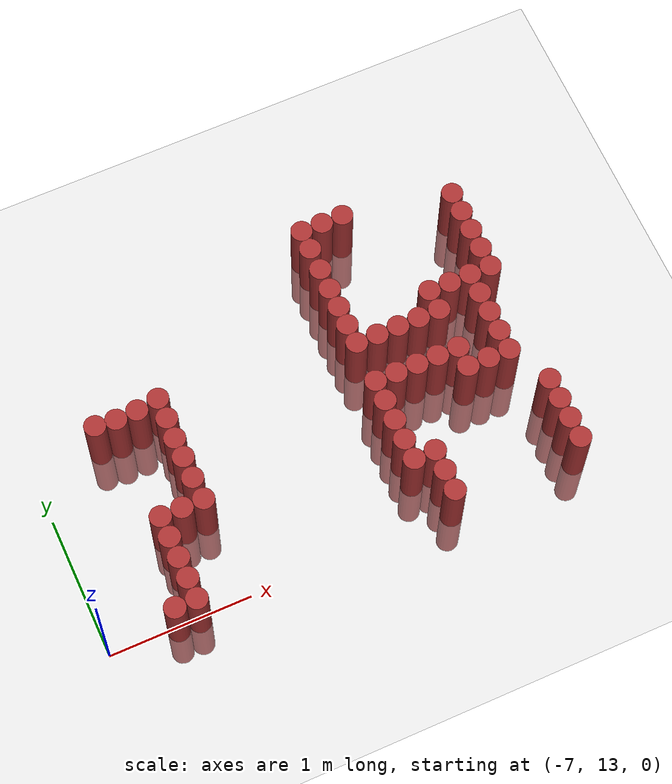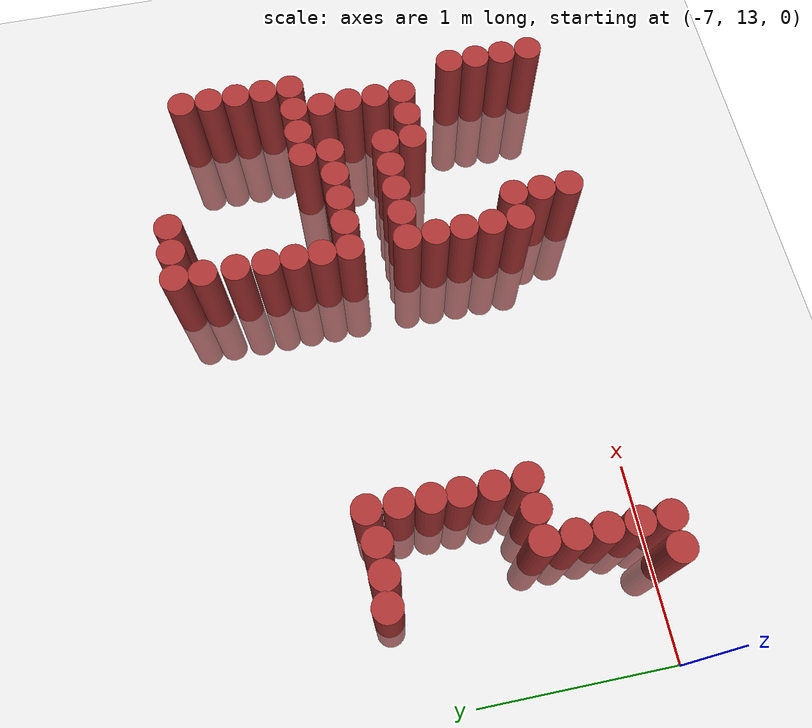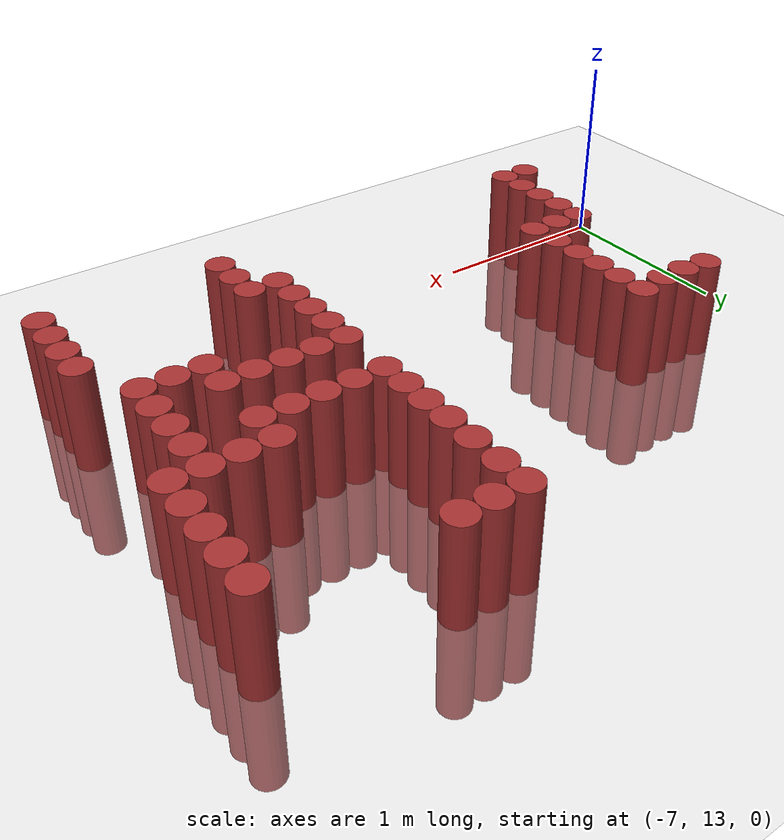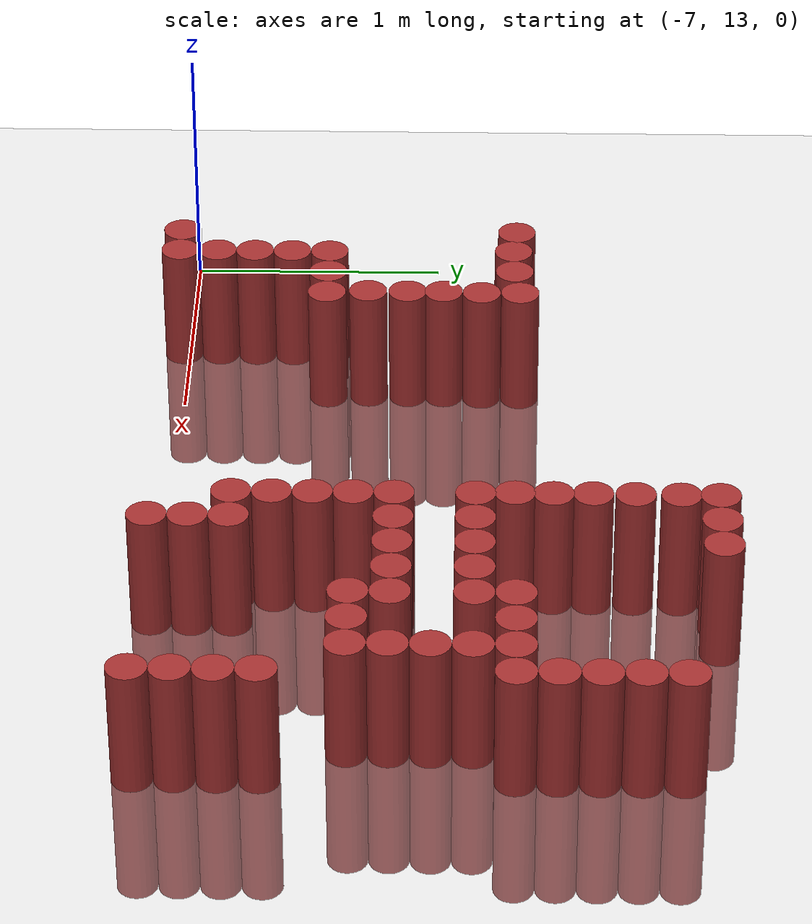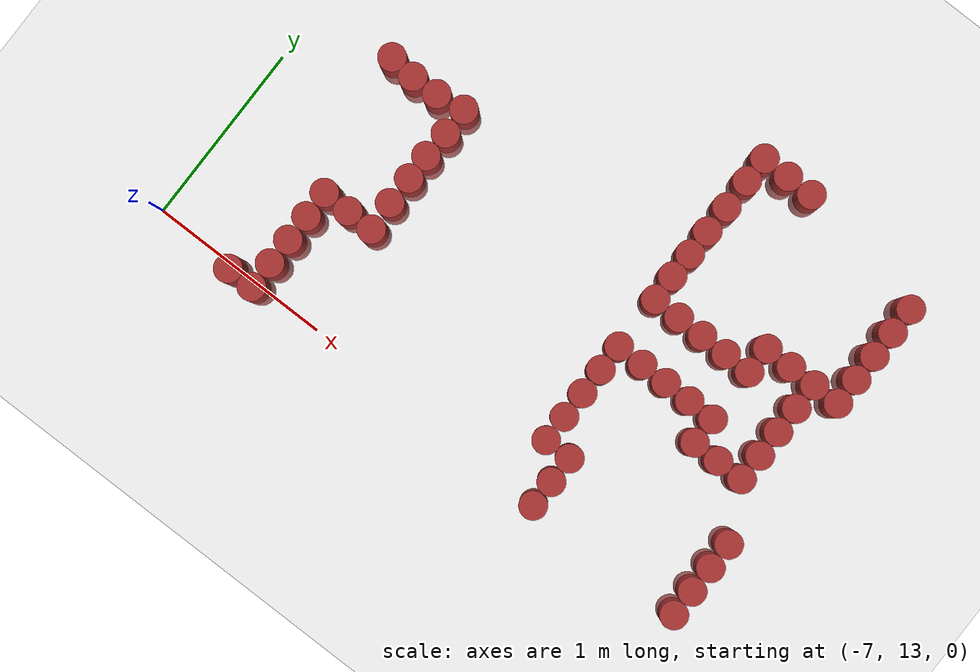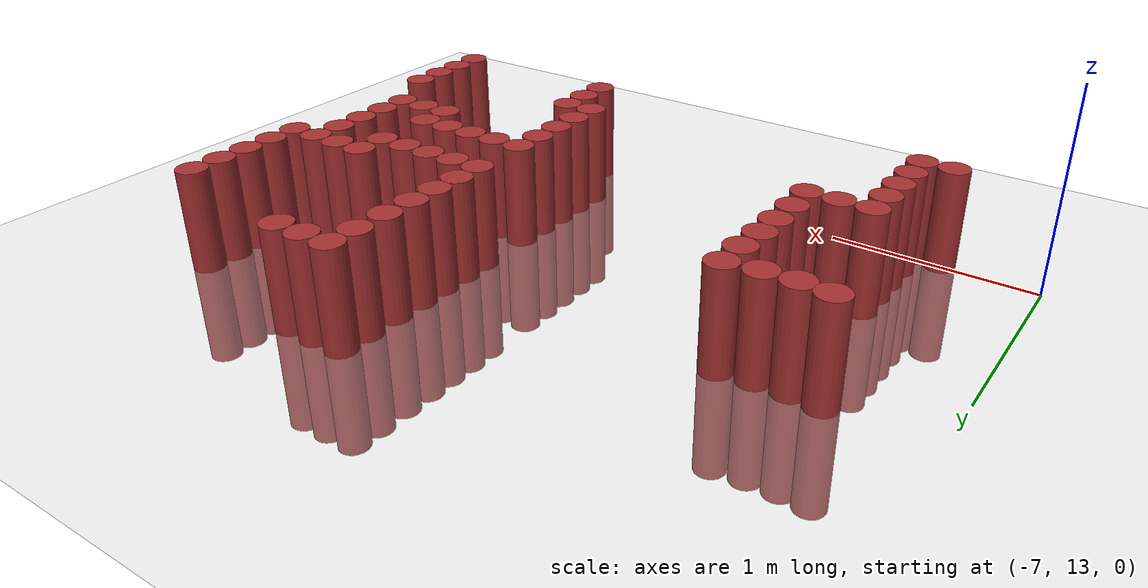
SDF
<sdf version="1.6">
 <world name="default">
  <model name="ground_plane">
   <static>1</static>
   <link name="link">
    <collision name="collision">
     <geometry><plane><normal>0 0 1</normal><size>100 100</size></plane></geometry>
     <surface><friction><ode><mu>100</mu><mu2>50</mu2></ode></friction></surface>
    </collision>
    <visual name="visual">
     <cast_shadows>0</cast_shadows>
     <geometry><plane><normal>0 0 1</normal><size>100 100</size></plane></geometry>
     <material>
      <script><uri>file://media/materials/scripts/gazebo.material</uri><name>Gazebo/Grey</name></script>
     </material>
    </visual>
   </link>
  </model>
  <model name="unit_cylinder_851">
   <static>1</static>
   <pose>-6.525 12.975 0 0 -0 0</pose>
   <link name="link">
    <inertial>
     <mass>1</mass>
     <inertia><ixx>0.145833</ixx><ixy>0</ixy><ixz>0</ixz><iyy>0.145833</iyy><iyz>0</iyz><izz>0.125</izz></inertia>
    </inertial>
    <collision name="collision">
     <geometry><cylinder><radius>0.075</radius><length>1</length></cylinder></geometry>
    </collision>
    <visual name="visual">
     <geometry><cylinder><radius>0.075</radius><length>1</length></cylinder></geometry>
     <material><ambient>0.648 0.192 0.192 1</ambient><diffuse>0.648 0.192 0.192 1</diffuse></material>
     <material>
      <script><name>Gazebo/Grey</name><uri>file://media/materials/scripts/gazebo.material</uri></script>
     </material>
    </visual>
   </link>
  </model>
  <model name="unit_cylinder_852">
   <static>1</static>
   <pose>-6.525 14.325 0 0 -0 0</pose>
   <link name="link">
    <inertial>
     <mass>1</mass>
     <inertia><ixx>0.145833</ixx><ixy>0</ixy><ixz>0</ixz><iyy>0.145833</iyy><iyz>0</iyz><izz>0.125</izz></inertia>
    </inertial>
    <collision name="collision">
     <geometry><cylinder><radius>0.075</radius><length>1</length></cylinder></geometry>
    </collision>
    <visual name="visual">
     <geometry><cylinder><radius>0.075</radius><length>1</length></cylinder></geometry>
     <material><ambient>0.648 0.192 0.192 1</ambient><diffuse>0.648 0.192 0.192 1</diffuse></material>
     <material>
      <script><name>Gazebo/Grey</name><uri>file://media/materials/scripts/gazebo.material</uri></script>
     </material>
    </visual>
   </link>
  </model>
  <model name="unit_cylinder_870">
   <static>1</static>
   <pose>-6.375 12.975 0 0 -0 0</pose>
   <link name="link">
    <inertial>
     <mass>1</mass>
     <inertia><ixx>0.145833</ixx><ixy>0</ixy><ixz>0</ixz><iyy>0.145833</iyy><iyz>0</iyz><izz>0.125</izz></inertia>
    </inertial>
    <collision name="collision">
     <geometry><cylinder><radius>0.075</radius><length>1</length></cylinder></geometry>
    </collision>
    <visual name="visual">
     <geometry><cylinder><radius>0.075</radius><length>1</length></cylinder></geometry>
     <material><ambient>0.648 0.192 0.192 1</ambient><diffuse>0.648 0.192 0.192 1</diffuse></material>
     <material>
      <script><name>Gazebo/Grey</name><uri>file://media/materials/scripts/gazebo.material</uri></script>
     </material>
    </visual>
   </link>
  </model>
  <model name="unit_cylinder_871">
   <static>1</static>
   <pose>-6.375 13.125 0 0 -0 0</pose>
   <link name="link">
    <inertial>
     <mass>1</mass>
     <inertia><ixx>0.145833</ixx><ixy>0</ixy><ixz>0</ixz><iyy>0.145833</iyy><iyz>0</iyz><izz>0.125</izz></inertia>
    </inertial>
    <collision name="collision">
     <geometry><cylinder><radius>0.075</radius><length>1</length></cylinder></geometry>
    </collision>
    <visual name="visual">
     <geometry><cylinder><radius>0.075</radius><length>1</length></cylinder></geometry>
     <material><ambient>0.648 0.192 0.192 1</ambient><diffuse>0.648 0.192 0.192 1</diffuse></material>
     <material>
      <script><name>Gazebo/Grey</name><uri>file://media/materials/scripts/gazebo.material</uri></script>
     </material>
    </visual>
   </link>
  </model>
  <model name="unit_cylinder_872">
   <static>1</static>
   <pose>-6.375 13.275 0 0 -0 0</pose>
   <link name="link">
    <inertial>
     <mass>1</mass>
     <inertia><ixx>0.145833</ixx><ixy>0</ixy><ixz>0</ixz><iyy>0.145833</iyy><iyz>0</iyz><izz>0.125</izz></inertia>
    </inertial>
    <collision name="collision">
     <geometry><cylinder><radius>0.075</radius><length>1</length></cylinder></geometry>
    </collision>
    <visual name="visual">
     <geometry><cylinder><radius>0.075</radius><length>1</length></cylinder></geometry>
     <material><ambient>0.648 0.192 0.192 1</ambient><diffuse>0.648 0.192 0.192 1</diffuse></material>
     <material>
      <script><name>Gazebo/Grey</name><uri>file://media/materials/scripts/gazebo.material</uri></script>
     </material>
    </visual>
   </link>
  </model>
  <model name="unit_cylinder_873">
   <static>1</static>
   <pose>-6.375 13.425 0 0 -0 0</pose>
   <link name="link">
    <inertial>
     <mass>1</mass>
     <inertia><ixx>0.145833</ixx><ixy>0</ixy><ixz>0</ixz><iyy>0.145833</iyy><iyz>0</iyz><izz>0.125</izz></inertia>
    </inertial>
    <collision name="collision">
     <geometry><cylinder><radius>0.075</radius><length>1</length></cylinder></geometry>
    </collision>
    <visual name="visual">
     <geometry><cylinder><radius>0.075</radius><length>1</length></cylinder></geometry>
     <material><ambient>0.648 0.192 0.192 1</ambient><diffuse>0.648 0.192 0.192 1</diffuse></material>
     <material>
      <script><name>Gazebo/Grey</name><uri>file://media/materials/scripts/gazebo.material</uri></script>
     </material>
    </visual>
   </link>
  </model>
  <model name="unit_cylinder_874">
   <static>1</static>
   <pose>-6.375 13.575 0 0 -0 0</pose>
   <link name="link">
    <inertial>
     <mass>1</mass>
     <inertia><ixx>0.145833</ixx><ixy>0</ixy><ixz>0</ixz><iyy>0.145833</iyy><iyz>0</iyz><izz>0.125</izz></inertia>
    </inertial>
    <collision name="collision">
     <geometry><cylinder><radius>0.075</radius><length>1</length></cylinder></geometry>
    </collision>
    <visual name="visual">
     <geometry><cylinder><radius>0.075</radius><length>1</length></cylinder></geometry>
     <material><ambient>0.648 0.192 0.192 1</ambient><diffuse>0.648 0.192 0.192 1</diffuse></material>
     <material>
      <script><name>Gazebo/Grey</name><uri>file://media/materials/scripts/gazebo.material</uri></script>
     </material>
    </visual>
   </link>
  </model>
  <model name="unit_cylinder_885">
   <static>1</static>
   <pose>-6.225 13.575 0 0 -0 0</pose>
   <link name="link">
    <inertial>
     <mass>1</mass>
     <inertia><ixx>0.145833</ixx><ixy>0</ixy><ixz>0</ixz><iyy>0.145833</iyy><iyz>0</iyz><izz>0.125</izz></inertia>
    </inertial>
    <collision name="collision">
     <geometry><cylinder><radius>0.075</radius><length>1</length></cylinder></geometry>
    </collision>
    <visual name="visual">
     <geometry><cylinder><radius>0.075</radius><length>1</length></cylinder></geometry>
     <material><ambient>0.648 0.192 0.192 1</ambient><diffuse>0.648 0.192 0.192 1</diffuse></material>
     <material>
      <script><name>Gazebo/Grey</name><uri>file://media/materials/scripts/gazebo.material</uri></script>
     </material>
    </visual>
   </link>
  </model>
  <model name="unit_cylinder_905">
   <static>1</static>
   <pose>-6.075 13.575 0 0 -0 0</pose>
   <link name="link">
    <inertial>
     <mass>1</mass>
     <inertia><ixx>0.145833</ixx><ixy>0</ixy><ixz>0</ixz><iyy>0.145833</iyy><iyz>0</iyz><izz>0.125</izz></inertia>
    </inertial>
    <collision name="collision">
     <geometry><cylinder><radius>0.075</radius><length>1</length></cylinder></geometry>
    </collision>
    <visual name="visual">
     <geometry><cylinder><radius>0.075</radius><length>1</length></cylinder></geometry>
     <material><ambient>0.648 0.192 0.192 1</ambient><diffuse>0.648 0.192 0.192 1</diffuse></material>
     <material>
      <script><name>Gazebo/Grey</name><uri>file://media/materials/scripts/gazebo.material</uri></script>
     </material>
    </visual>
   </link>
  </model>
  <model name="unit_cylinder_1054">
   <static>1</static>
   <pose>-4.725 13.275 0 0 -0 0</pose>
   <link name="link">
    <inertial>
     <mass>1</mass>
     <inertia><ixx>0.145833</ixx><ixy>0</ixy><ixz>0</ixz><iyy>0.145833</iyy><iyz>0</iyz><izz>0.125</izz></inertia>
    </inertial>
    <collision name="collision">
     <geometry><cylinder><radius>0.075</radius><length>1</length></cylinder></geometry>
    </collision>
    <visual name="visual">
     <geometry><cylinder><radius>0.075</radius><length>1</length></cylinder></geometry>
     <material><ambient>0.648 0.192 0.192 1</ambient><diffuse>0.648 0.192 0.192 1</diffuse></material>
     <material>
      <script><name>Gazebo/Grey</name><uri>file://media/materials/scripts/gazebo.material</uri></script>
     </material>
    </visual>
   </link>
  </model>
  <model name="unit_cylinder_1055">
   <static>1</static>
   <pose>-4.725 13.425 0 0 -0 0</pose>
   <link name="link">
    <inertial>
     <mass>1</mass>
     <inertia><ixx>0.145833</ixx><ixy>0</ixy><ixz>0</ixz><iyy>0.145833</iyy><iyz>0</iyz><izz>0.125</izz></inertia>
    </inertial>
    <collision name="collision">
     <geometry><cylinder><radius>0.075</radius><length>1</length></cylinder></geometry>
    </collision>
    <visual name="visual">
     <geometry><cylinder><radius>0.075</radius><length>1</length></cylinder></geometry>
     <material><ambient>0.648 0.192 0.192 1</ambient><diffuse>0.648 0.192 0.192 1</diffuse></material>
     <material>
      <script><name>Gazebo/Grey</name><uri>file://media/materials/scripts/gazebo.material</uri></script>
     </material>
    </visual>
   </link>
  </model>
  <model name="unit_cylinder_1056">
   <static>1</static>
   <pose>-4.725 13.575 0 0 -0 0</pose>
   <link name="link">
    <inertial>
     <mass>1</mass>
     <inertia><ixx>0.145833</ixx><ixy>0</ixy><ixz>0</ixz><iyy>0.145833</iyy><iyz>0</iyz><izz>0.125</izz></inertia>
    </inertial>
    <collision name="collision">
     <geometry><cylinder><radius>0.075</radius><length>1</length></cylinder></geometry>
    </collision>
    <visual name="visual">
     <geometry><cylinder><radius>0.075</radius><length>1</length></cylinder></geometry>
     <material><ambient>0.648 0.192 0.192 1</ambient><diffuse>0.648 0.192 0.192 1</diffuse></material>
     <material>
      <script><name>Gazebo/Grey</name><uri>file://media/materials/scripts/gazebo.material</uri></script>
     </material>
    </visual>
   </link>
  </model>
  <model name="unit_cylinder_1057">
   <static>1</static>
   <pose>-4.725 13.725 0 0 -0 0</pose>
   <link name="link">
    <inertial>
     <mass>1</mass>
     <inertia><ixx>0.145833</ixx><ixy>0</ixy><ixz>0</ixz><iyy>0.145833</iyy><iyz>0</iyz><izz>0.125</izz></inertia>
    </inertial>
    <collision name="collision">
     <geometry><cylinder><radius>0.075</radius><length>1</length></cylinder></geometry>
    </collision>
    <visual name="visual">
     <geometry><cylinder><radius>0.075</radius><length>1</length></cylinder></geometry>
     <material><ambient>0.648 0.192 0.192 1</ambient><diffuse>0.648 0.192 0.192 1</diffuse></material>
     <material>
      <script><name>Gazebo/Grey</name><uri>file://media/materials/scripts/gazebo.material</uri></script>
     </material>
    </visual>
   </link>
  </model>
  <model name="unit_cylinder_1058">
   <static>1</static>
   <pose>-4.725 13.875 0 0 -0 0</pose>
   <link name="link">
    <inertial>
     <mass>1</mass>
     <inertia><ixx>0.145833</ixx><ixy>0</ixy><ixz>0</ixz><iyy>0.145833</iyy><iyz>0</iyz><izz>0.125</izz></inertia>
    </inertial>
    <collision name="collision">
     <geometry><cylinder><radius>0.075</radius><length>1</length></cylinder></geometry>
    </collision>
    <visual name="visual">
     <geometry><cylinder><radius>0.075</radius><length>1</length></cylinder></geometry>
     <material><ambient>0.648 0.192 0.192 1</ambient><diffuse>0.648 0.192 0.192 1</diffuse></material>
     <material>
      <script><name>Gazebo/Grey</name><uri>file://media/materials/scripts/gazebo.material</uri></script>
     </material>
    </visual>
   </link>
  </model>
  <model name="unit_cylinder_1059">
   <static>1</static>
   <pose>-4.725 14.175 0 0 -0 0</pose>
   <link name="link">
    <inertial>
     <mass>1</mass>
     <inertia><ixx>0.145833</ixx><ixy>0</ixy><ixz>0</ixz><iyy>0.145833</iyy><iyz>0</iyz><izz>0.125</izz></inertia>
    </inertial>
    <collision name="collision">
     <geometry><cylinder><radius>0.075</radius><length>1</length></cylinder></geometry>
    </collision>
    <visual name="visual">
     <geometry><cylinder><radius>0.075</radius><length>1</length></cylinder></geometry>
     <material><ambient>0.648 0.192 0.192 1</ambient><diffuse>0.648 0.192 0.192 1</diffuse></material>
     <material>
      <script><name>Gazebo/Grey</name><uri>file://media/materials/scripts/gazebo.material</uri></script>
     </material>
    </visual>
   </link>
  </model>
  <model name="unit_cylinder_1060">
   <static>1</static>
   <pose>-4.725 15.075 0 0 -0 0</pose>
   <link name="link">
    <inertial>
     <mass>1</mass>
     <inertia><ixx>0.145833</ixx><ixy>0</ixy><ixz>0</ixz><iyy>0.145833</iyy><iyz>0</iyz><izz>0.125</izz></inertia>
    </inertial>
    <collision name="collision">
     <geometry><cylinder><radius>0.075</radius><length>1</length></cylinder></geometry>
    </collision>
    <visual name="visual">
     <geometry><cylinder><radius>0.075</radius><length>1</length></cylinder></geometry>
     <material><ambient>0.648 0.192 0.192 1</ambient><diffuse>0.648 0.192 0.192 1</diffuse></material>
     <material>
      <script><name>Gazebo/Grey</name><uri>file://media/materials/scripts/gazebo.material</uri></script>
     </material>
    </visual>
   </link>
  </model>
  <model name="unit_cylinder_1090">
   <static>1</static>
   <pose>-4.575 12.975 0 0 -0 0</pose>
   <link name="link">
    <inertial>
     <mass>1</mass>
     <inertia><ixx>0.145833</ixx><ixy>0</ixy><ixz>0</ixz><iyy>0.145833</iyy><iyz>0</iyz><izz>0.125</izz></inertia>
    </inertial>
    <collision name="collision">
     <geometry><cylinder><radius>0.075</radius><length>1</length></cylinder></geometry>
    </collision>
    <visual name="visual">
     <geometry><cylinder><radius>0.075</radius><length>1</length></cylinder></geometry>
     <material><ambient>0.648 0.192 0.192 1</ambient><diffuse>0.648 0.192 0.192 1</diffuse></material>
     <material>
      <script><name>Gazebo/Grey</name><uri>file://media/materials/scripts/gazebo.material</uri></script>
     </material>
    </visual>
   </link>
  </model>
  <model name="unit_cylinder_1091">
   <static>1</static>
   <pose>-4.575 13.125 0 0 -0 0</pose>
   <link name="link">
    <inertial>
     <mass>1</mass>
     <inertia><ixx>0.145833</ixx><ixy>0</ixy><ixz>0</ixz><iyy>0.145833</iyy><iyz>0</iyz><izz>0.125</izz></inertia>
    </inertial>
    <collision name="collision">
     <geometry><cylinder><radius>0.075</radius><length>1</length></cylinder></geometry>
    </collision>
    <visual name="visual">
     <geometry><cylinder><radius>0.075</radius><length>1</length></cylinder></geometry>
     <material><ambient>0.648 0.192 0.192 1</ambient><diffuse>0.648 0.192 0.192 1</diffuse></material>
     <material>
      <script><name>Gazebo/Grey</name><uri>file://media/materials/scripts/gazebo.material</uri></script>
     </material>
    </visual>
   </link>
  </model>
  <model name="unit_cylinder_1092">
   <static>1</static>
   <pose>-4.575 13.275 0 0 -0 0</pose>
   <link name="link">
    <inertial>
     <mass>1</mass>
     <inertia><ixx>0.145833</ixx><ixy>0</ixy><ixz>0</ixz><iyy>0.145833</iyy><iyz>0</iyz><izz>0.125</izz></inertia>
    </inertial>
    <collision name="collision">
     <geometry><cylinder><radius>0.075</radius><length>1</length></cylinder></geometry>
    </collision>
    <visual name="visual">
     <geometry><cylinder><radius>0.075</radius><length>1</length></cylinder></geometry>
     <material><ambient>0.648 0.192 0.192 1</ambient><diffuse>0.648 0.192 0.192 1</diffuse></material>
     <material>
      <script><name>Gazebo/Grey</name><uri>file://media/materials/scripts/gazebo.material</uri></script>
     </material>
    </visual>
   </link>
  </model>
  <model name="unit_cylinder_1093">
   <static>1</static>
   <pose>-4.575 13.875 0 0 -0 0</pose>
   <link name="link">
    <inertial>
     <mass>1</mass>
     <inertia><ixx>0.145833</ixx><ixy>0</ixy><ixz>0</ixz><iyy>0.145833</iyy><iyz>0</iyz><izz>0.125</izz></inertia>
    </inertial>
    <collision name="collision">
     <geometry><cylinder><radius>0.075</radius><length>1</length></cylinder></geometry>
    </collision>
    <visual name="visual">
     <geometry><cylinder><radius>0.075</radius><length>1</length></cylinder></geometry>
     <material><ambient>0.648 0.192 0.192 1</ambient><diffuse>0.648 0.192 0.192 1</diffuse></material>
     <material>
      <script><name>Gazebo/Grey</name><uri>file://media/materials/scripts/gazebo.material</uri></script>
     </material>
    </visual>
   </link>
  </model>
  <model name="unit_cylinder_1094">
   <static>1</static>
   <pose>-4.575 14.175 0 0 -0 0</pose>
   <link name="link">
    <inertial>
     <mass>1</mass>
     <inertia><ixx>0.145833</ixx><ixy>0</ixy><ixz>0</ixz><iyy>0.145833</iyy><iyz>0</iyz><izz>0.125</izz></inertia>
    </inertial>
    <collision name="collision">
     <geometry><cylinder><radius>0.075</radius><length>1</length></cylinder></geometry>
    </collision>
    <visual name="visual">
     <geometry><cylinder><radius>0.075</radius><length>1</length></cylinder></geometry>
     <material><ambient>0.648 0.192 0.192 1</ambient><diffuse>0.648 0.192 0.192 1</diffuse></material>
     <material>
      <script><name>Gazebo/Grey</name><uri>file://media/materials/scripts/gazebo.material</uri></script>
     </material>
    </visual>
   </link>
  </model>
  <model name="unit_cylinder_1095">
   <static>1</static>
   <pose>-4.575 15.075 0 0 -0 0</pose>
   <link name="link">
    <inertial>
     <mass>1</mass>
     <inertia><ixx>0.145833</ixx><ixy>0</ixy><ixz>0</ixz><iyy>0.145833</iyy><iyz>0</iyz><izz>0.125</izz></inertia>
    </inertial>
    <collision name="collision">
     <geometry><cylinder><radius>0.075</radius><length>1</length></cylinder></geometry>
    </collision>
    <visual name="visual">
     <geometry><cylinder><radius>0.075</radius><length>1</length></cylinder></geometry>
     <material><ambient>0.648 0.192 0.192 1</ambient><diffuse>0.648 0.192 0.192 1</diffuse></material>
     <material>
      <script><name>Gazebo/Grey</name><uri>file://media/materials/scripts/gazebo.material</uri></script>
     </material>
    </visual>
   </link>
  </model>
  <model name="unit_cylinder_1107">
   <static>1</static>
   <pose>-4.425 13.875 0 0 -0 0</pose>
   <link name="link">
    <inertial>
     <mass>1</mass>
     <inertia><ixx>0.145833</ixx><ixy>0</ixy><ixz>0</ixz><iyy>0.145833</iyy><iyz>0</iyz><izz>0.125</izz></inertia>
    </inertial>
    <collision name="collision">
     <geometry><cylinder><radius>0.075</radius><length>1</length></cylinder></geometry>
    </collision>
    <visual name="visual">
     <geometry><cylinder><radius>0.075</radius><length>1</length></cylinder></geometry>
     <material><ambient>0.648 0.192 0.192 1</ambient><diffuse>0.648 0.192 0.192 1</diffuse></material>
     <material>
      <script><name>Gazebo/Grey</name><uri>file://media/materials/scripts/gazebo.material</uri></script>
     </material>
    </visual>
   </link>
  </model>
  <model name="unit_cylinder_1108">
   <static>1</static>
   <pose>-4.425 14.175 0 0 -0 0</pose>
   <link name="link">
    <inertial>
     <mass>1</mass>
     <inertia><ixx>0.145833</ixx><ixy>0</ixy><ixz>0</ixz><iyy>0.145833</iyy><iyz>0</iyz><izz>0.125</izz></inertia>
    </inertial>
    <collision name="collision">
     <geometry><cylinder><radius>0.075</radius><length>1</length></cylinder></geometry>
    </collision>
    <visual name="visual">
     <geometry><cylinder><radius>0.075</radius><length>1</length></cylinder></geometry>
     <material><ambient>0.648 0.192 0.192 1</ambient><diffuse>0.648 0.192 0.192 1</diffuse></material>
     <material>
      <script><name>Gazebo/Grey</name><uri>file://media/materials/scripts/gazebo.material</uri></script>
     </material>
    </visual>
   </link>
  </model>
  <model name="unit_cylinder_1109">
   <static>1</static>
   <pose>-4.425 15.075 0 0 -0 0</pose>
   <link name="link">
    <inertial>
     <mass>1</mass>
     <inertia><ixx>0.145833</ixx><ixy>0</ixy><ixz>0</ixz><iyy>0.145833</iyy><iyz>0</iyz><izz>0.125</izz></inertia>
    </inertial>
    <collision name="collision">
     <geometry><cylinder><radius>0.075</radius><length>1</length></cylinder></geometry>
    </collision>
    <visual name="visual">
     <geometry><cylinder><radius>0.075</radius><length>1</length></cylinder></geometry>
     <material><ambient>0.648 0.192 0.192 1</ambient><diffuse>0.648 0.192 0.192 1</diffuse></material>
     <material>
      <script><name>Gazebo/Grey</name><uri>file://media/materials/scripts/gazebo.material</uri></script>
     </material>
    </visual>
   </link>
  </model>
  <model name="unit_cylinder_1122">
   <static>1</static>
   <pose>-4.275 13.875 0 0 -0 0</pose>
   <link name="link">
    <inertial>
     <mass>1</mass>
     <inertia><ixx>0.145833</ixx><ixy>0</ixy><ixz>0</ixz><iyy>0.145833</iyy><iyz>0</iyz><izz>0.125</izz></inertia>
    </inertial>
    <collision name="collision">
     <geometry><cylinder><radius>0.075</radius><length>1</length></cylinder></geometry>
    </collision>
    <visual name="visual">
     <geometry><cylinder><radius>0.075</radius><length>1</length></cylinder></geometry>
     <material><ambient>0.648 0.192 0.192 1</ambient><diffuse>0.648 0.192 0.192 1</diffuse></material>
     <material>
      <script><name>Gazebo/Grey</name><uri>file://media/materials/scripts/gazebo.material</uri></script>
     </material>
    </visual>
   </link>
  </model>
  <model name="unit_cylinder_1123">
   <static>1</static>
   <pose>-4.275 14.175 0 0 -0 0</pose>
   <link name="link">
    <inertial>
     <mass>1</mass>
     <inertia><ixx>0.145833</ixx><ixy>0</ixy><ixz>0</ixz><iyy>0.145833</iyy><iyz>0</iyz><izz>0.125</izz></inertia>
    </inertial>
    <collision name="collision">
     <geometry><cylinder><radius>0.075</radius><length>1</length></cylinder></geometry>
    </collision>
    <visual name="visual">
     <geometry><cylinder><radius>0.075</radius><length>1</length></cylinder></geometry>
     <material><ambient>0.648 0.192 0.192 1</ambient><diffuse>0.648 0.192 0.192 1</diffuse></material>
     <material>
      <script><name>Gazebo/Grey</name><uri>file://media/materials/scripts/gazebo.material</uri></script>
     </material>
    </visual>
   </link>
  </model>
  <model name="unit_cylinder_1133">
   <static>1</static>
   <pose>-4.125 13.725 0 0 -0 0</pose>
   <link name="link">
    <inertial>
     <mass>1</mass>
     <inertia><ixx>0.145833</ixx><ixy>0</ixy><ixz>0</ixz><iyy>0.145833</iyy><iyz>0</iyz><izz>0.125</izz></inertia>
    </inertial>
    <collision name="collision">
     <geometry><cylinder><radius>0.075</radius><length>1</length></cylinder></geometry>
    </collision>
    <visual name="visual">
     <geometry><cylinder><radius>0.075</radius><length>1</length></cylinder></geometry>
     <material><ambient>0.648 0.192 0.192 1</ambient><diffuse>0.648 0.192 0.192 1</diffuse></material>
     <material>
      <script><name>Gazebo/Grey</name><uri>file://media/materials/scripts/gazebo.material</uri></script>
     </material>
    </visual>
   </link>
  </model>
  <model name="unit_cylinder_1134">
   <static>1</static>
   <pose>-4.125 13.875 0 0 -0 0</pose>
   <link name="link">
    <inertial>
     <mass>1</mass>
     <inertia><ixx>0.145833</ixx><ixy>0</ixy><ixz>0</ixz><iyy>0.145833</iyy><iyz>0</iyz><izz>0.125</izz></inertia>
    </inertial>
    <collision name="collision">
     <geometry><cylinder><radius>0.075</radius><length>1</length></cylinder></geometry>
    </collision>
    <visual name="visual">
     <geometry><cylinder><radius>0.075</radius><length>1</length></cylinder></geometry>
     <material><ambient>0.648 0.192 0.192 1</ambient><diffuse>0.648 0.192 0.192 1</diffuse></material>
     <material>
      <script><name>Gazebo/Grey</name><uri>file://media/materials/scripts/gazebo.material</uri></script>
     </material>
    </visual>
   </link>
  </model>
  <model name="unit_cylinder_1135">
   <static>1</static>
   <pose>-4.125 14.175 0 0 -0 0</pose>
   <link name="link">
    <inertial>
     <mass>1</mass>
     <inertia><ixx>0.145833</ixx><ixy>0</ixy><ixz>0</ixz><iyy>0.145833</iyy><iyz>0</iyz><izz>0.125</izz></inertia>
    </inertial>
    <collision name="collision">
     <geometry><cylinder><radius>0.075</radius><length>1</length></cylinder></geometry>
    </collision>
    <visual name="visual">
     <geometry><cylinder><radius>0.075</radius><length>1</length></cylinder></geometry>
     <material><ambient>0.648 0.192 0.192 1</ambient><diffuse>0.648 0.192 0.192 1</diffuse></material>
     <material>
      <script><name>Gazebo/Grey</name><uri>file://media/materials/scripts/gazebo.material</uri></script>
     </material>
    </visual>
   </link>
  </model>
  <model name="unit_cylinder_1136">
   <static>1</static>
   <pose>-4.125 14.325 0 0 -0 0</pose>
   <link name="link">
    <inertial>
     <mass>1</mass>
     <inertia><ixx>0.145833</ixx><ixy>0</ixy><ixz>0</ixz><iyy>0.145833</iyy><iyz>0</iyz><izz>0.125</izz></inertia>
    </inertial>
    <collision name="collision">
     <geometry><cylinder><radius>0.075</radius><length>1</length></cylinder></geometry>
    </collision>
    <visual name="visual">
     <geometry><cylinder><radius>0.075</radius><length>1</length></cylinder></geometry>
     <material><ambient>0.648 0.192 0.192 1</ambient><diffuse>0.648 0.192 0.192 1</diffuse></material>
     <material>
      <script><name>Gazebo/Grey</name><uri>file://media/materials/scripts/gazebo.material</uri></script>
     </material>
    </visual>
   </link>
  </model>
  <model name="unit_cylinder_1143">
   <static>1</static>
   <pose>-3.975 13.725 0 0 -0 0</pose>
   <link name="link">
    <inertial>
     <mass>1</mass>
     <inertia><ixx>0.145833</ixx><ixy>0</ixy><ixz>0</ixz><iyy>0.145833</iyy><iyz>0</iyz><izz>0.125</izz></inertia>
    </inertial>
    <collision name="collision">
     <geometry><cylinder><radius>0.075</radius><length>1</length></cylinder></geometry>
    </collision>
    <visual name="visual">
     <geometry><cylinder><radius>0.075</radius><length>1</length></cylinder></geometry>
     <material><ambient>0.648 0.192 0.192 1</ambient><diffuse>0.648 0.192 0.192 1</diffuse></material>
     <material>
      <script><name>Gazebo/Grey</name><uri>file://media/materials/scripts/gazebo.material</uri></script>
     </material>
    </visual>
   </link>
  </model>
  <model name="unit_cylinder_1144">
   <static>1</static>
   <pose>-3.975 14.325 0 0 -0 0</pose>
   <link name="link">
    <inertial>
     <mass>1</mass>
     <inertia><ixx>0.145833</ixx><ixy>0</ixy><ixz>0</ixz><iyy>0.145833</iyy><iyz>0</iyz><izz>0.125</izz></inertia>
    </inertial>
    <collision name="collision">
     <geometry><cylinder><radius>0.075</radius><length>1</length></cylinder></geometry>
    </collision>
    <visual name="visual">
     <geometry><cylinder><radius>0.075</radius><length>1</length></cylinder></geometry>
     <material><ambient>0.648 0.192 0.192 1</ambient><diffuse>0.648 0.192 0.192 1</diffuse></material>
     <material>
      <script><name>Gazebo/Grey</name><uri>file://media/materials/scripts/gazebo.material</uri></script>
     </material>
    </visual>
   </link>
  </model>
  <model name="unit_cylinder_1151">
   <static>1</static>
   <pose>-3.825 13.725 0 0 -0 0</pose>
   <link name="link">
    <inertial>
     <mass>1</mass>
     <inertia><ixx>0.145833</ixx><ixy>0</ixy><ixz>0</ixz><iyy>0.145833</iyy><iyz>0</iyz><izz>0.125</izz></inertia>
    </inertial>
    <collision name="collision">
     <geometry><cylinder><radius>0.075</radius><length>1</length></cylinder></geometry>
    </collision>
    <visual name="visual">
     <geometry><cylinder><radius>0.075</radius><length>1</length></cylinder></geometry>
     <material><ambient>0.648 0.192 0.192 1</ambient><diffuse>0.648 0.192 0.192 1</diffuse></material>
     <material>
      <script><name>Gazebo/Grey</name><uri>file://media/materials/scripts/gazebo.material</uri></script>
     </material>
    </visual>
   </link>
  </model>
  <model name="unit_cylinder_1152">
   <static>1</static>
   <pose>-3.825 13.875 0 0 -0 0</pose>
   <link name="link">
    <inertial>
     <mass>1</mass>
     <inertia><ixx>0.145833</ixx><ixy>0</ixy><ixz>0</ixz><iyy>0.145833</iyy><iyz>0</iyz><izz>0.125</izz></inertia>
    </inertial>
    <collision name="collision">
     <geometry><cylinder><radius>0.075</radius><length>1</length></cylinder></geometry>
    </collision>
    <visual name="visual">
     <geometry><cylinder><radius>0.075</radius><length>1</length></cylinder></geometry>
     <material><ambient>0.648 0.192 0.192 1</ambient><diffuse>0.648 0.192 0.192 1</diffuse></material>
     <material>
      <script><name>Gazebo/Grey</name><uri>file://media/materials/scripts/gazebo.material</uri></script>
     </material>
    </visual>
   </link>
  </model>
  <model name="unit_cylinder_1153">
   <static>1</static>
   <pose>-3.825 14.025 0 0 -0 0</pose>
   <link name="link">
    <inertial>
     <mass>1</mass>
     <inertia><ixx>0.145833</ixx><ixy>0</ixy><ixz>0</ixz><iyy>0.145833</iyy><iyz>0</iyz><izz>0.125</izz></inertia>
    </inertial>
    <collision name="collision">
     <geometry><cylinder><radius>0.075</radius><length>1</length></cylinder></geometry>
    </collision>
    <visual name="visual">
     <geometry><cylinder><radius>0.075</radius><length>1</length></cylinder></geometry>
     <material><ambient>0.648 0.192 0.192 1</ambient><diffuse>0.648 0.192 0.192 1</diffuse></material>
     <material>
      <script><name>Gazebo/Grey</name><uri>file://media/materials/scripts/gazebo.material</uri></script>
     </material>
    </visual>
   </link>
  </model>
  <model name="unit_cylinder_1154">
   <static>1</static>
   <pose>-3.825 14.175 0 0 -0 0</pose>
   <link name="link">
    <inertial>
     <mass>1</mass>
     <inertia><ixx>0.145833</ixx><ixy>0</ixy><ixz>0</ixz><iyy>0.145833</iyy><iyz>0</iyz><izz>0.125</izz></inertia>
    </inertial>
    <collision name="collision">
     <geometry><cylinder><radius>0.075</radius><length>1</length></cylinder></geometry>
    </collision>
    <visual name="visual">
     <geometry><cylinder><radius>0.075</radius><length>1</length></cylinder></geometry>
     <material><ambient>0.648 0.192 0.192 1</ambient><diffuse>0.648 0.192 0.192 1</diffuse></material>
     <material>
      <script><name>Gazebo/Grey</name><uri>file://media/materials/scripts/gazebo.material</uri></script>
     </material>
    </visual>
   </link>
  </model>
  <model name="unit_cylinder_1155">
   <static>1</static>
   <pose>-3.825 14.325 0 0 -0 0</pose>
   <link name="link">
    <inertial>
     <mass>1</mass>
     <inertia><ixx>0.145833</ixx><ixy>0</ixy><ixz>0</ixz><iyy>0.145833</iyy><iyz>0</iyz><izz>0.125</izz></inertia>
    </inertial>
    <collision name="collision">
     <geometry><cylinder><radius>0.075</radius><length>1</length></cylinder></geometry>
    </collision>
    <visual name="visual">
     <geometry><cylinder><radius>0.075</radius><length>1</length></cylinder></geometry>
     <material><ambient>0.648 0.192 0.192 1</ambient><diffuse>0.648 0.192 0.192 1</diffuse></material>
     <material>
      <script><name>Gazebo/Grey</name><uri>file://media/materials/scripts/gazebo.material</uri></script>
     </material>
    </visual>
   </link>
  </model>
  <model name="unit_cylinder_1170">
   <static>1</static>
   <pose>-3.675 12.975 0 0 -0 0</pose>
   <link name="link">
    <inertial>
     <mass>1</mass>
     <inertia><ixx>0.145833</ixx><ixy>0</ixy><ixz>0</ixz><iyy>0.145833</iyy><iyz>0</iyz><izz>0.125</izz></inertia>
    </inertial>
    <collision name="collision">
     <geometry><cylinder><radius>0.075</radius><length>1</length></cylinder></geometry>
    </collision>
    <visual name="visual">
     <geometry><cylinder><radius>0.075</radius><length>1</length></cylinder></geometry>
     <material><ambient>0.648 0.192 0.192 1</ambient><diffuse>0.648 0.192 0.192 1</diffuse></material>
     <material>
      <script><name>Gazebo/Grey</name><uri>file://media/materials/scripts/gazebo.material</uri></script>
     </material>
    </visual>
   </link>
  </model>
  <model name="unit_cylinder_1171">
   <static>1</static>
   <pose>-3.675 13.125 0 0 -0 0</pose>
   <link name="link">
    <inertial>
     <mass>1</mass>
     <inertia><ixx>0.145833</ixx><ixy>0</ixy><ixz>0</ixz><iyy>0.145833</iyy><iyz>0</iyz><izz>0.125</izz></inertia>
    </inertial>
    <collision name="collision">
     <geometry><cylinder><radius>0.075</radius><length>1</length></cylinder></geometry>
    </collision>
    <visual name="visual">
     <geometry><cylinder><radius>0.075</radius><length>1</length></cylinder></geometry>
     <material><ambient>0.648 0.192 0.192 1</ambient><diffuse>0.648 0.192 0.192 1</diffuse></material>
     <material>
      <script><name>Gazebo/Grey</name><uri>file://media/materials/scripts/gazebo.material</uri></script>
     </material>
    </visual>
   </link>
  </model>
  <model name="unit_cylinder_1172">
   <static>1</static>
   <pose>-3.675 13.275 0 0 -0 0</pose>
   <link name="link">
    <inertial>
     <mass>1</mass>
     <inertia><ixx>0.145833</ixx><ixy>0</ixy><ixz>0</ixz><iyy>0.145833</iyy><iyz>0</iyz><izz>0.125</izz></inertia>
    </inertial>
    <collision name="collision">
     <geometry><cylinder><radius>0.075</radius><length>1</length></cylinder></geometry>
    </collision>
    <visual name="visual">
     <geometry><cylinder><radius>0.075</radius><length>1</length></cylinder></geometry>
     <material><ambient>0.648 0.192 0.192 1</ambient><diffuse>0.648 0.192 0.192 1</diffuse></material>
     <material>
      <script><name>Gazebo/Grey</name><uri>file://media/materials/scripts/gazebo.material</uri></script>
     </material>
    </visual>
   </link>
  </model>
  <model name="unit_cylinder_1173">
   <static>1</static>
   <pose>-3.675 13.425 0 0 -0 0</pose>
   <link name="link">
    <inertial>
     <mass>1</mass>
     <inertia><ixx>0.145833</ixx><ixy>0</ixy><ixz>0</ixz><iyy>0.145833</iyy><iyz>0</iyz><izz>0.125</izz></inertia>
    </inertial>
    <collision name="collision">
     <geometry><cylinder><radius>0.075</radius><length>1</length></cylinder></geometry>
    </collision>
    <visual name="visual">
     <geometry><cylinder><radius>0.075</radius><length>1</length></cylinder></geometry>
     <material><ambient>0.648 0.192 0.192 1</ambient><diffuse>0.648 0.192 0.192 1</diffuse></material>
     <material>
      <script><name>Gazebo/Grey</name><uri>file://media/materials/scripts/gazebo.material</uri></script>
     </material>
    </visual>
   </link>
  </model>
  <model name="unit_cylinder_1174">
   <static>1</static>
   <pose>-3.675 14.325 0 0 -0 0</pose>
   <link name="link">
    <inertial>
     <mass>1</mass>
     <inertia><ixx>0.145833</ixx><ixy>0</ixy><ixz>0</ixz><iyy>0.145833</iyy><iyz>0</iyz><izz>0.125</izz></inertia>
    </inertial>
    <collision name="collision">
     <geometry><cylinder><radius>0.075</radius><length>1</length></cylinder></geometry>
    </collision>
    <visual name="visual">
     <geometry><cylinder><radius>0.075</radius><length>1</length></cylinder></geometry>
     <material><ambient>0.648 0.192 0.192 1</ambient><diffuse>0.648 0.192 0.192 1</diffuse></material>
     <material>
      <script><name>Gazebo/Grey</name><uri>file://media/materials/scripts/gazebo.material</uri></script>
     </material>
    </visual>
   </link>
  </model>
  <model name="unit_cylinder_1175">
   <static>1</static>
   <pose>-3.675 14.475 0 0 -0 0</pose>
   <link name="link">
    <inertial>
     <mass>1</mass>
     <inertia><ixx>0.145833</ixx><ixy>0</ixy><ixz>0</ixz><iyy>0.145833</iyy><iyz>0</iyz><izz>0.125</izz></inertia>
    </inertial>
    <collision name="collision">
     <geometry><cylinder><radius>0.075</radius><length>1</length></cylinder></geometry>
    </collision>
    <visual name="visual">
     <geometry><cylinder><radius>0.075</radius><length>1</length></cylinder></geometry>
     <material><ambient>0.648 0.192 0.192 1</ambient><diffuse>0.648 0.192 0.192 1</diffuse></material>
     <material>
      <script><name>Gazebo/Grey</name><uri>file://media/materials/scripts/gazebo.material</uri></script>
     </material>
    </visual>
   </link>
  </model>
  <model name="unit_cylinder_1176">
   <static>1</static>
   <pose>-3.675 14.625 0 0 -0 0</pose>
   <link name="link">
    <inertial>
     <mass>1</mass>
     <inertia><ixx>0.145833</ixx><ixy>0</ixy><ixz>0</ixz><iyy>0.145833</iyy><iyz>0</iyz><izz>0.125</izz></inertia>
    </inertial>
    <collision name="collision">
     <geometry><cylinder><radius>0.075</radius><length>1</length></cylinder></geometry>
    </collision>
    <visual name="visual">
     <geometry><cylinder><radius>0.075</radius><length>1</length></cylinder></geometry>
     <material><ambient>0.648 0.192 0.192 1</ambient><diffuse>0.648 0.192 0.192 1</diffuse></material>
     <material>
      <script><name>Gazebo/Grey</name><uri>file://media/materials/scripts/gazebo.material</uri></script>
     </material>
    </visual>
   </link>
  </model>
  <model name="unit_cylinder_1177">
   <static>1</static>
   <pose>-3.675 14.775 0 0 -0 0</pose>
   <link name="link">
    <inertial>
     <mass>1</mass>
     <inertia><ixx>0.145833</ixx><ixy>0</ixy><ixz>0</ixz><iyy>0.145833</iyy><iyz>0</iyz><izz>0.125</izz></inertia>
    </inertial>
    <collision name="collision">
     <geometry><cylinder><radius>0.075</radius><length>1</length></cylinder></geometry>
    </collision>
    <visual name="visual">
     <geometry><cylinder><radius>0.075</radius><length>1</length></cylinder></geometry>
     <material><ambient>0.648 0.192 0.192 1</ambient><diffuse>0.648 0.192 0.192 1</diffuse></material>
     <material>
      <script><name>Gazebo/Grey</name><uri>file://media/materials/scripts/gazebo.material</uri></script>
     </material>
    </visual>
   </link>
  </model>
  <model name="unit_cylinder_1178">
   <static>1</static>
   <pose>-3.675 14.925 0 0 -0 0</pose>
   <link name="link">
    <inertial>
     <mass>1</mass>
     <inertia><ixx>0.145833</ixx><ixy>0</ixy><ixz>0</ixz><iyy>0.145833</iyy><iyz>0</iyz><izz>0.125</izz></inertia>
    </inertial>
    <collision name="collision">
     <geometry><cylinder><radius>0.075</radius><length>1</length></cylinder></geometry>
    </collision>
    <visual name="visual">
     <geometry><cylinder><radius>0.075</radius><length>1</length></cylinder></geometry>
     <material><ambient>0.648 0.192 0.192 1</ambient><diffuse>0.648 0.192 0.192 1</diffuse></material>
     <material>
      <script><name>Gazebo/Grey</name><uri>file://media/materials/scripts/gazebo.material</uri></script>
     </material>
    </visual>
   </link>
  </model>
  <model name="unit_cylinder_906_clone">
   <static>1</static>
   <pose>-6.0767 14.3387 0 0 -0 0</pose>
   <link name="link">
    <inertial>
     <mass>1</mass>
     <inertia><ixx>0.145833</ixx><ixy>0</ixy><ixz>0</ixz><iyy>0.145833</iyy><iyz>0</iyz><izz>0.125</izz></inertia>
    </inertial>
    <collision name="collision">
     <geometry><cylinder><radius>0.075</radius><length>1</length></cylinder></geometry>
    </collision>
    <visual name="visual">
     <geometry><cylinder><radius>0.075</radius><length>1</length></cylinder></geometry>
     <material><ambient>0.648 0.192 0.192 1</ambient><diffuse>0.648 0.192 0.192 1</diffuse></material>
     <material>
      <script><name>Gazebo/Grey</name><uri>file://media/materials/scripts/gazebo.material</uri></script>
     </material>
    </visual>
   </link>
  </model>
  <model name="unit_cylinder_906_clone_0">
   <static>1</static>
   <pose>-6.07643 14.1868 0 0 -0 0</pose>
   <link name="link">
    <inertial>
     <mass>1</mass>
     <inertia><ixx>0.145833</ixx><ixy>0</ixy><ixz>0</ixz><iyy>0.145833</iyy><iyz>0</iyz><izz>0.125</izz></inertia>
    </inertial>
    <collision name="collision">
     <geometry><cylinder><radius>0.075</radius><length>1</length></cylinder></geometry>
    </collision>
    <visual name="visual">
     <geometry><cylinder><radius>0.075</radius><length>1</length></cylinder></geometry>
     <material><ambient>0.648 0.192 0.192 1</ambient><diffuse>0.648 0.192 0.192 1</diffuse></material>
     <material>
      <script><name>Gazebo/Grey</name><uri>file://media/materials/scripts/gazebo.material</uri></script>
     </material>
    </visual>
   </link>
  </model>
  <model name="unit_cylinder_906_clone_1">
   <static>1</static>
   <pose>-6.08373 14.0363 0 0 -0 0</pose>
   <link name="link">
    <inertial>
     <mass>1</mass>
     <inertia><ixx>0.145833</ixx><ixy>0</ixy><ixz>0</ixz><iyy>0.145833</iyy><iyz>0</iyz><izz>0.125</izz></inertia>
    </inertial>
    <collision name="collision">
     <geometry><cylinder><radius>0.075</radius><length>1</length></cylinder></geometry>
    </collision>
    <visual name="visual">
     <geometry><cylinder><radius>0.075</radius><length>1</length></cylinder></geometry>
     <material><ambient>0.648 0.192 0.192 1</ambient><diffuse>0.648 0.192 0.192 1</diffuse></material>
     <material>
      <script><name>Gazebo/Grey</name><uri>file://media/materials/scripts/gazebo.material</uri></script>
     </material>
    </visual>
   </link>
  </model>
  <model name="unit_cylinder_906_clone_2">
   <static>1</static>
   <pose>-6.08306 13.8938 0 0 -0 0</pose>
   <link name="link">
    <inertial>
     <mass>1</mass>
     <inertia><ixx>0.145833</ixx><ixy>0</ixy><ixz>0</ixz><iyy>0.145833</iyy><iyz>0</iyz><izz>0.125</izz></inertia>
    </inertial>
    <collision name="collision">
     <geometry><cylinder><radius>0.075</radius><length>1</length></cylinder></geometry>
    </collision>
    <visual name="visual">
     <geometry><cylinder><radius>0.075</radius><length>1</length></cylinder></geometry>
     <material><ambient>0.648 0.192 0.192 1</ambient><diffuse>0.648 0.192 0.192 1</diffuse></material>
     <material>
      <script><name>Gazebo/Grey</name><uri>file://media/materials/scripts/gazebo.material</uri></script>
     </material>
    </visual>
   </link>
  </model>
  <model name="unit_cylinder_906_clone_3">
   <static>1</static>
   <pose>-6.08317 13.7373 0 0 -0 0</pose>
   <link name="link">
    <inertial>
     <mass>1</mass>
     <inertia><ixx>0.145833</ixx><ixy>0</ixy><ixz>0</ixz><iyy>0.145833</iyy><iyz>0</iyz><izz>0.125</izz></inertia>
    </inertial>
    <collision name="collision">
     <geometry><cylinder><radius>0.075</radius><length>1</length></cylinder></geometry>
    </collision>
    <visual name="visual">
     <geometry><cylinder><radius>0.075</radius><length>1</length></cylinder></geometry>
     <material><ambient>0.648 0.192 0.192 1</ambient><diffuse>0.648 0.192 0.192 1</diffuse></material>
     <material>
      <script><name>Gazebo/Grey</name><uri>file://media/materials/scripts/gazebo.material</uri></script>
     </material>
    </visual>
   </link>
  </model>
  <model name="unit_cylinder_852_clone">
   <static>1</static>
   <pose>-6.38229 14.3121 0 0 -0 0</pose>
   <link name="link">
    <inertial>
     <mass>1</mass>
     <inertia><ixx>0.145833</ixx><ixy>0</ixy><ixz>0</ixz><iyy>0.145833</iyy><iyz>0</iyz><izz>0.125</izz></inertia>
    </inertial>
    <collision name="collision">
     <geometry><cylinder><radius>0.075</radius><length>1</length></cylinder></geometry>
    </collision>
    <visual name="visual">
     <geometry><cylinder><radius>0.075</radius><length>1</length></cylinder></geometry>
     <material><ambient>0.648 0.192 0.192 1</ambient><diffuse>0.648 0.192 0.192 1</diffuse></material>
     <material>
      <script><name>Gazebo/Grey</name><uri>file://media/materials/scripts/gazebo.material</uri></script>
     </material>
    </visual>
   </link>
  </model>
  <model name="unit_cylinder_852_clone_0">
   <static>1</static>
   <pose>-6.23283 14.3169 0 0 -0 0</pose>
   <link name="link">
    <inertial>
     <mass>1</mass>
     <inertia><ixx>0.145833</ixx><ixy>0</ixy><ixz>0</ixz><iyy>0.145833</iyy><iyz>0</iyz><izz>0.125</izz></inertia>
    </inertial>
    <collision name="collision">
     <geometry><cylinder><radius>0.075</radius><length>1</length></cylinder></geometry>
    </collision>
    <visual name="visual">
     <geometry><cylinder><radius>0.075</radius><length>1</length></cylinder></geometry>
     <material><ambient>0.648 0.192 0.192 1</ambient><diffuse>0.648 0.192 0.192 1</diffuse></material>
     <material>
      <script><name>Gazebo/Grey</name><uri>file://media/materials/scripts/gazebo.material</uri></script>
     </material>
    </visual>
   </link>
  </model>
  <model name="unit_cylinder_1060_clone">
   <static>1</static>
   <pose>-4.72553 14.9303 0 0 -0 0</pose>
   <link name="link">
    <inertial>
     <mass>1</mass>
     <inertia><ixx>0.145833</ixx><ixy>0</ixy><ixz>0</ixz><iyy>0.145833</iyy><iyz>0</iyz><izz>0.125</izz></inertia>
    </inertial>
    <collision name="collision">
     <geometry><cylinder><radius>0.075</radius><length>1</length></cylinder></geometry>
    </collision>
    <visual name="visual">
     <geometry><cylinder><radius>0.075</radius><length>1</length></cylinder></geometry>
     <material><ambient>0.648 0.192 0.192 1</ambient><diffuse>0.648 0.192 0.192 1</diffuse></material>
     <material>
      <script><name>Gazebo/Grey</name><uri>file://media/materials/scripts/gazebo.material</uri></script>
     </material>
    </visual>
   </link>
  </model>
  <model name="unit_cylinder_1060_clone_3">
   <static>1</static>
   <pose>-4.72841 14.3198 0 0 -0 0</pose>
   <link name="link">
    <inertial>
     <mass>1</mass>
     <inertia><ixx>0.145833</ixx><ixy>0</ixy><ixz>0</ixz><iyy>0.145833</iyy><iyz>0</iyz><izz>0.125</izz></inertia>
    </inertial>
    <collision name="collision">
     <geometry><cylinder><radius>0.075</radius><length>1</length></cylinder></geometry>
    </collision>
    <visual name="visual">
     <geometry><cylinder><radius>0.075</radius><length>1</length></cylinder></geometry>
     <material><ambient>0.648 0.192 0.192 1</ambient><diffuse>0.648 0.192 0.192 1</diffuse></material>
     <material>
      <script><name>Gazebo/Grey</name><uri>file://media/materials/scripts/gazebo.material</uri></script>
     </material>
    </visual>
   </link>
  </model>
  <model name="unit_cylinder_1060_clone_2">
   <static>1</static>
   <pose>-4.72653 14.4622 0 0 -0 0</pose>
   <link name="link">
    <inertial>
     <mass>1</mass>
     <inertia><ixx>0.145833</ixx><ixy>0</ixy><ixz>0</ixz><iyy>0.145833</iyy><iyz>0</iyz><izz>0.125</izz></inertia>
    </inertial>
    <collision name="collision">
     <geometry><cylinder><radius>0.075</radius><length>1</length></cylinder></geometry>
    </collision>
    <visual name="visual">
     <geometry><cylinder><radius>0.075</radius><length>1</length></cylinder></geometry>
     <material><ambient>0.648 0.192 0.192 1</ambient><diffuse>0.648 0.192 0.192 1</diffuse></material>
     <material>
      <script><name>Gazebo/Grey</name><uri>file://media/materials/scripts/gazebo.material</uri></script>
     </material>
    </visual>
   </link>
  </model>
  <model name="unit_cylinder_1060_clone_clone">
   <static>1</static>
   <pose>-4.72752 14.6072 0 0 -0 0</pose>
   <link name="link">
    <inertial>
     <mass>1</mass>
     <inertia><ixx>0.145833</ixx><ixy>0</ixy><ixz>0</ixz><iyy>0.145833</iyy><iyz>0</iyz><izz>0.125</izz></inertia>
    </inertial>
    <collision name="collision">
     <geometry><cylinder><radius>0.075</radius><length>1</length></cylinder></geometry>
    </collision>
    <visual name="visual">
     <geometry><cylinder><radius>0.075</radius><length>1</length></cylinder></geometry>
     <material><ambient>0.648 0.192 0.192 1</ambient><diffuse>0.648 0.192 0.192 1</diffuse></material>
     <material>
      <script><name>Gazebo/Grey</name><uri>file://media/materials/scripts/gazebo.material</uri></script>
     </material>
    </visual>
   </link>
  </model>
  <model name="unit_cylinder_1060_clone_clone_0">
   <static>1</static>
   <pose>-4.72578 14.7631 0 0 -0 0</pose>
   <link name="link">
    <inertial>
     <mass>1</mass>
     <inertia><ixx>0.145833</ixx><ixy>0</ixy><ixz>0</ixz><iyy>0.145833</iyy><iyz>0</iyz><izz>0.125</izz></inertia>
    </inertial>
    <collision name="collision">
     <geometry><cylinder><radius>0.075</radius><length>1</length></cylinder></geometry>
    </collision>
    <visual name="visual">
     <geometry><cylinder><radius>0.075</radius><length>1</length></cylinder></geometry>
     <material><ambient>0.648 0.192 0.192 1</ambient><diffuse>0.648 0.192 0.192 1</diffuse></material>
     <material>
      <script><name>Gazebo/Grey</name><uri>file://media/materials/scripts/gazebo.material</uri></script>
     </material>
    </visual>
   </link>
  </model>
 </world>
</sdf>
